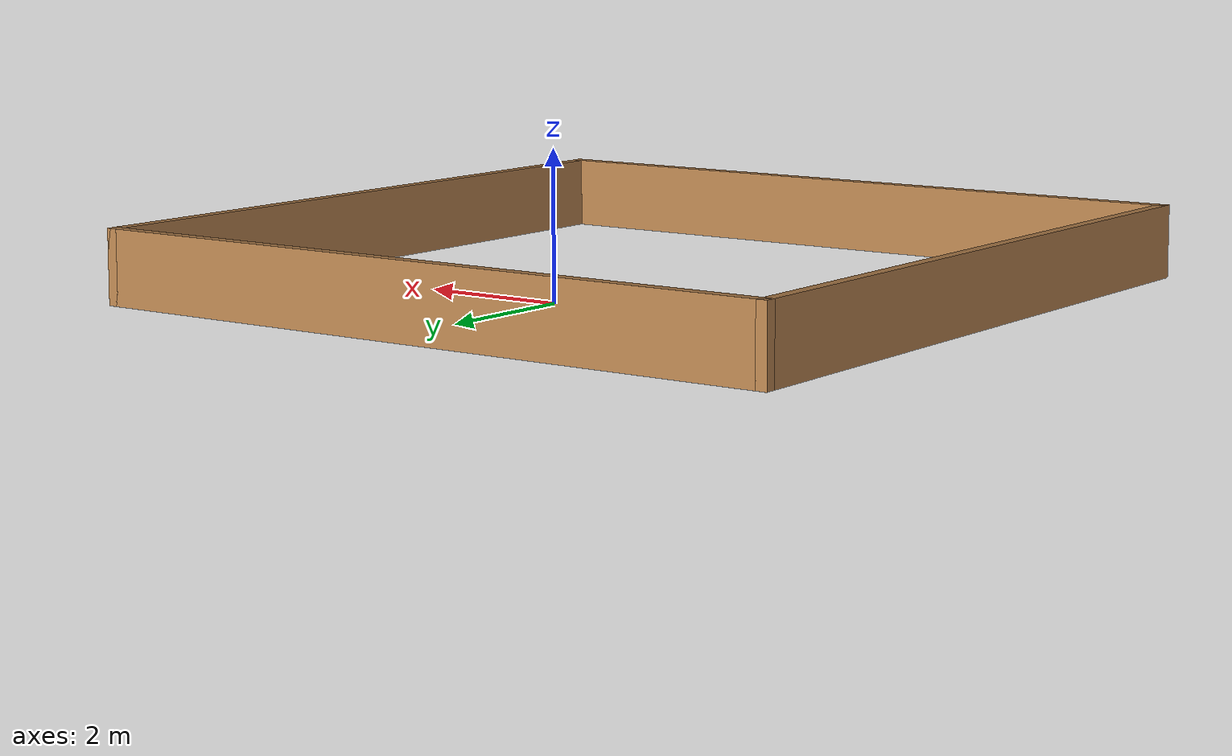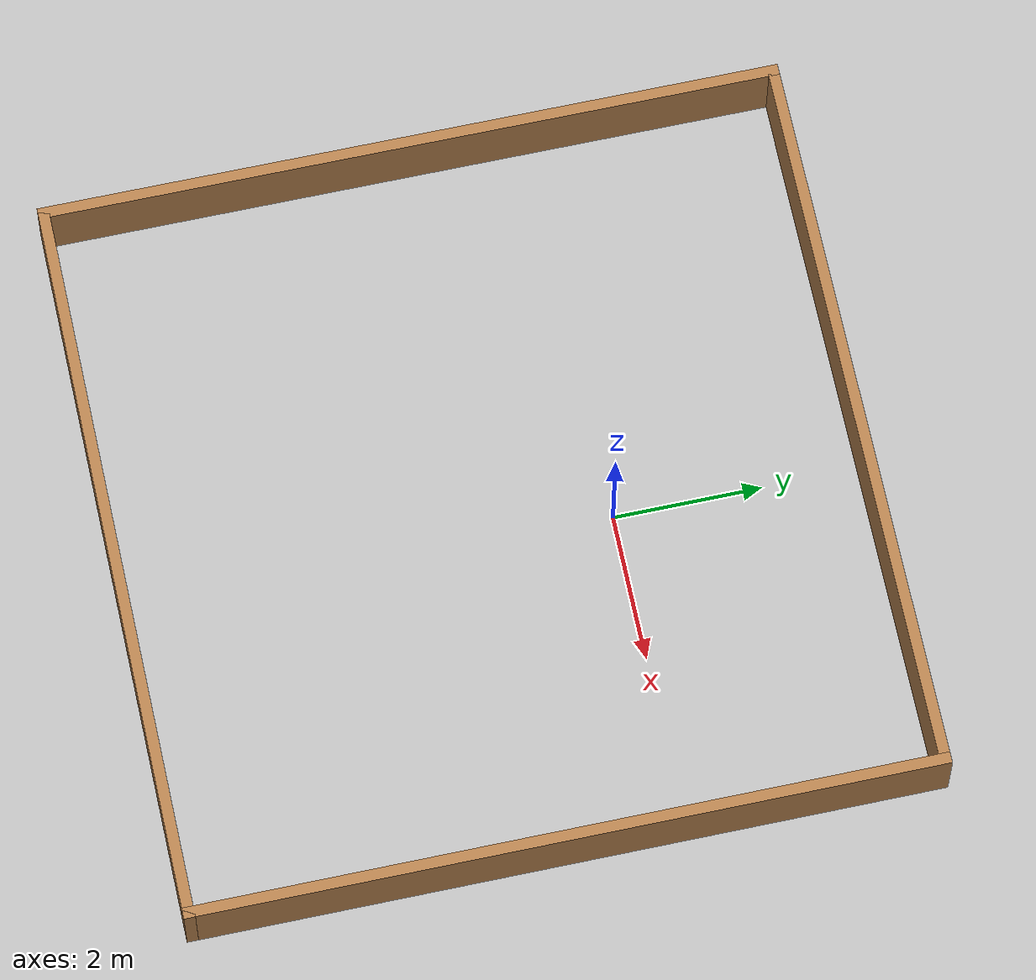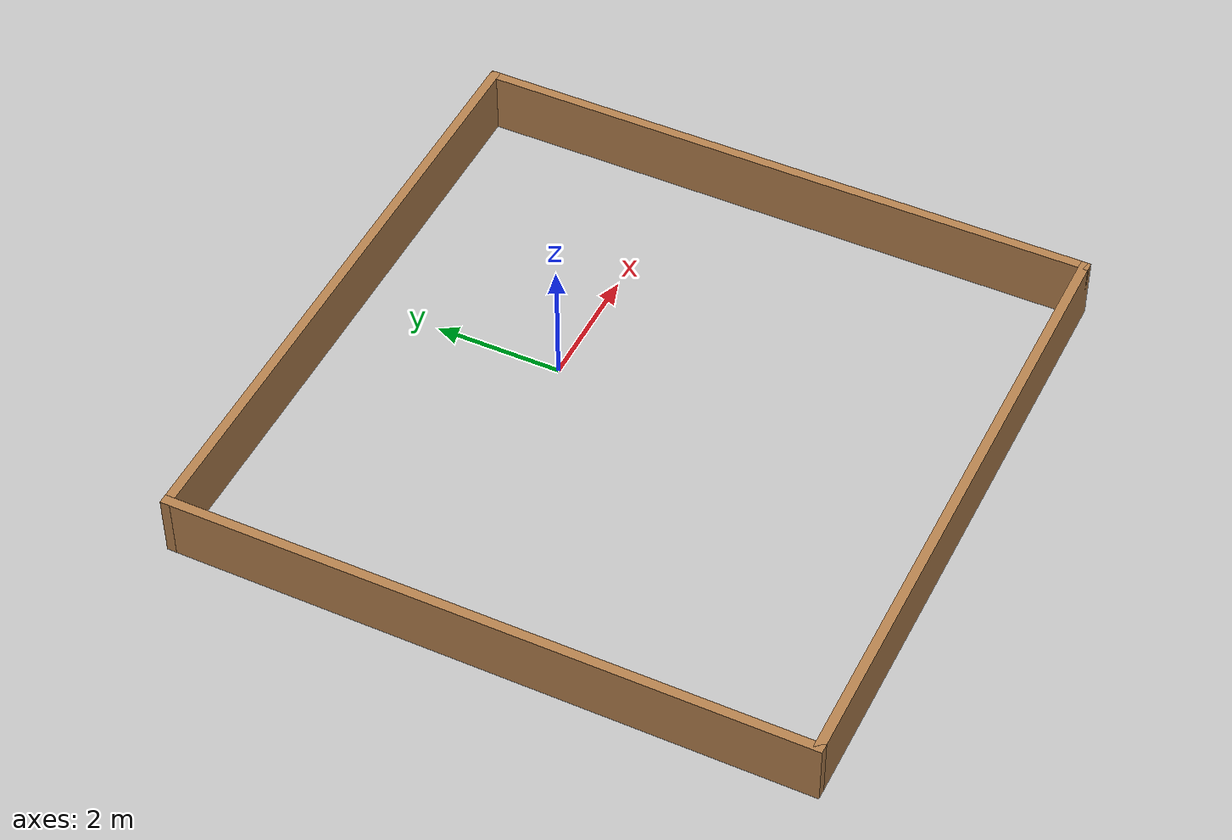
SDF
<?xml version='1.0'?>
<sdf version='1.6'>
  <model name='10x10sq'>
    <pose frame=''>-0.471 -1.582 0 0 -0 0</pose>
    <link name='Wall_0'>
      <collision name='Wall_0_Collision'>
        <geometry>
          <box>
            <size>10 0.15 1</size>
          </box>
        </geometry>
        <pose frame=''>0 0 0.5 0 -0 0</pose>
      </collision>
      <visual name='Wall_0_Visual'>
        <pose frame=''>0 0 0.5 0 -0 0</pose>
        <geometry>
          <box>
            <size>10 0.15 1</size>
          </box>
        </geometry>
        <material>
          <script>
            <uri>file://media/materials/scripts/gazebo.material</uri>
            <name>Gazebo/Wood</name>
          </script>
          <ambient>1 1 1 1</ambient>
        </material>
      </visual>
      <pose frame=''>0 4.925 0 0 -0 0</pose>
    </link>
    <link name='Wall_1'>
      <collision name='Wall_1_Collision'>
        <geometry>
          <box>
            <size>10 0.15 1</size>
          </box>
        </geometry>
        <pose frame=''>0 0 0.5 0 -0 0</pose>
      </collision>
      <visual name='Wall_1_Visual'>
        <pose frame=''>0 0 0.5 0 -0 0</pose>
        <geometry>
          <box>
            <size>10 0.15 1</size>
          </box>
        </geometry>
        <material>
          <script>
            <uri>file://media/materials/scripts/gazebo.material</uri>
            <name>Gazebo/Wood</name>
          </script>
          <ambient>1 1 1 1</ambient>
        </material>
      </visual>
      <pose frame=''>4.925 0 0 0 0 -1.5708</pose>
    </link>
    <link name='Wall_3'>
      <collision name='Wall_3_Collision'>
        <geometry>
          <box>
            <size>10 0.15 1</size>
          </box>
        </geometry>
        <pose frame=''>0 0 0.5 0 -0 0</pose>
      </collision>
      <visual name='Wall_3_Visual'>
        <pose frame=''>0 0 0.5 0 -0 0</pose>
        <geometry>
          <box>
            <size>10 0.15 1</size>
          </box>
        </geometry>
        <material>
          <script>
            <uri>file://media/materials/scripts/gazebo.material</uri>
            <name>Gazebo/Wood</name>
          </script>
          <ambient>1 1 1 1</ambient>
        </material>
      </visual>
      <pose frame=''>-4.925 0 0 0 0 -1.5708</pose>
    </link>
    <link name='Wall_5'>
      <collision name='Wall_5_Collision'>
        <geometry>
          <box>
            <size>10 0.15 1</size>
          </box>
        </geometry>
        <pose frame=''>0 0 0.5 0 -0 0</pose>
      </collision>
      <visual name='Wall_5_Visual'>
        <pose frame=''>0 0 0.5 0 -0 0</pose>
        <geometry>
          <box>
            <size>10 0.15 1</size>
          </box>
        </geometry>
        <material>
          <script>
            <uri>file://media/materials/scripts/gazebo.material</uri>
            <name>Gazebo/Wood</name>
          </script>
          <ambient>1 1 1 1</ambient>
        </material>
      </visual>
      <pose frame=''>0 -4.925 0 0 -0 0</pose>
    </link>
    <static>1</static>
  </model>
</sdf>
